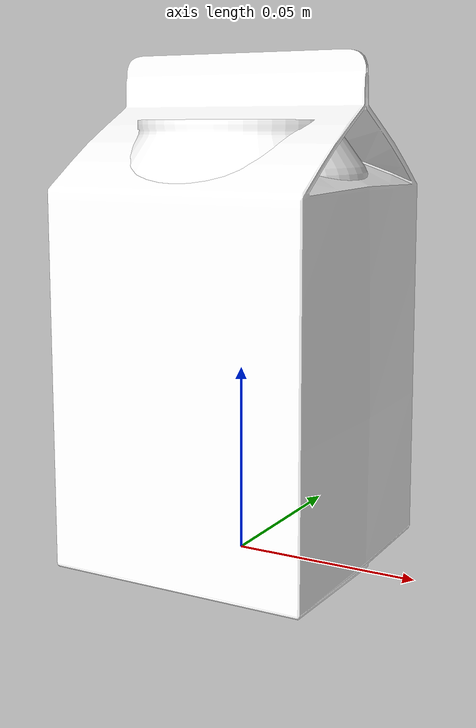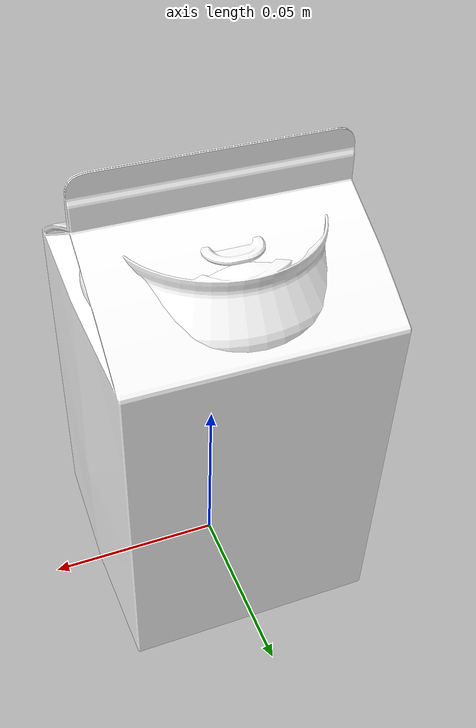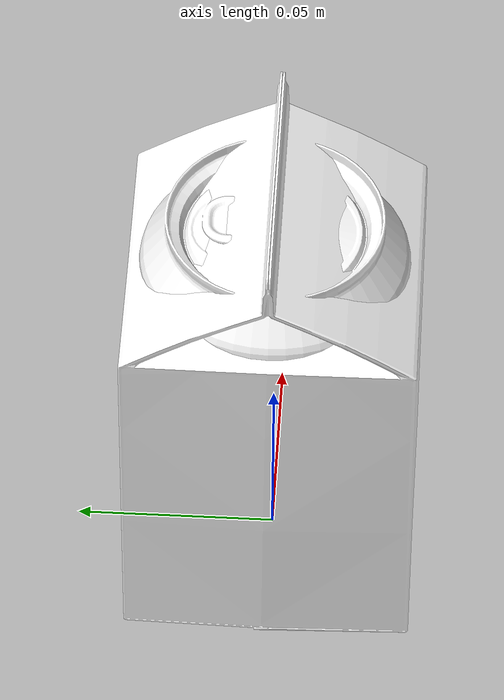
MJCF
<mujoco>
  <compiler angle="radian" assetdir="assets"/>
  <option>
    <flag/>
  </option>
  <statistic/>
  <asset>
    <texture type="2d" colorspace="sRGB" name="V_Cans_N330" file="V_Cans_N330.png"/>
    <texture type="2d" colorspace="linear" name="V_Cans_N330_orm" file="V_Cans_N330_orm.png"/>
    <texture type="2d" colorspace="sRGB" name="V_Tetra_500" file="V_Tetra_500.png"/>
    <material name="Cans_B" rgba="1.0 1.0 1.0 1.0" reflectance="0.5" roughness="1.0" metallic="1.0">
      <layer texture="V_Cans_N330" role="rgb"/>
      <layer texture="V_Cans_N330_orm" role="orm"/>
    </material>
    <material name="Tetra_D" rgba="1.0 1.0 1.0 1.0" reflectance="0.5" roughness="0.3" metallic="0.0">
      <layer texture="V_Tetra_500" role="rgb"/>
    </material>
    <mesh name="V_Cans_N330" file="V_Cans_N330.obj"/>
    <mesh name="V_Tetra_500" file="V_Tetra_500.obj"/>
  </asset>
  <worldbody>
    <body name="LNK_Cans_N330" pos="-0.0 0.0001263 0.0596309" quat="1.0 0.0 0.0 0.0">
      <geom name="V_Cans_N330" pos="0.0 0.0 0.0" quat="1.0 0.0 0.0 0.0" type="mesh" mesh="V_Cans_N330" material="Cans_B" group="2"/>
    </body>
    <body name="LNK_Tetra_500" pos="-0.0 0.0001263 0.0596309" quat="1.0 0.0 0.0 0.0">
      <geom name="V_Tetra_500" pos="0.0 -0.0001347 0.0016961" quat="1.0 0.0 0.0 0.0" type="mesh" mesh="V_Tetra_500" material="Tetra_D" group="2"/>
    </body>
  </worldbody>
</mujoco>
